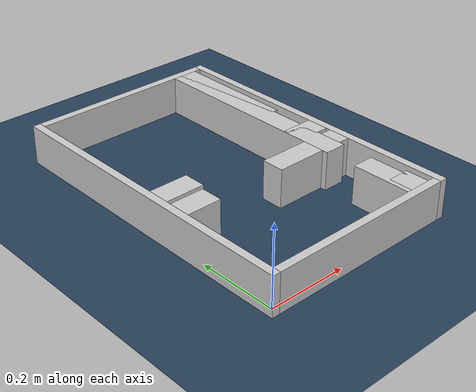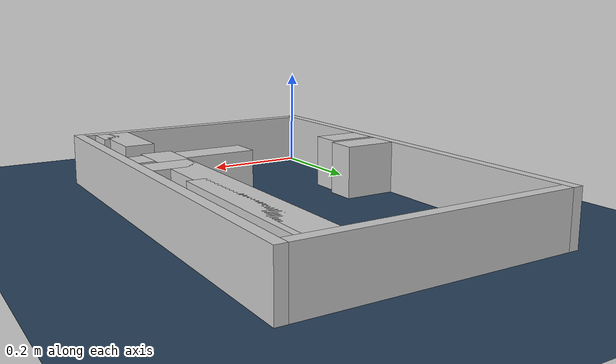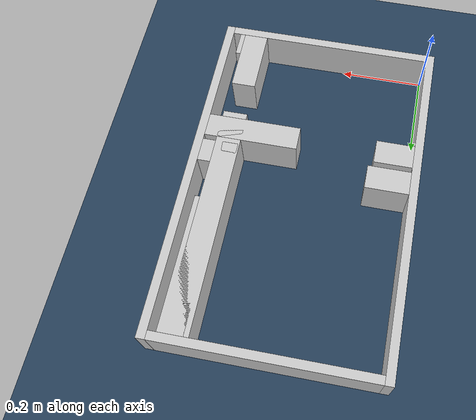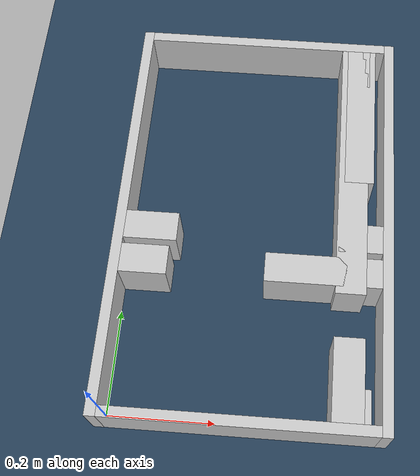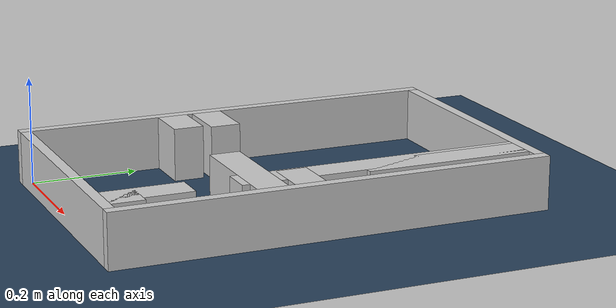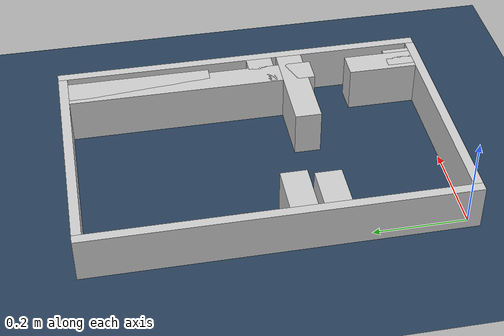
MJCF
<?xml version="1.0" ?>
<mujoco model="generated_real_template">
  <compiler angle="degree"/>
  <option timestep="0.002" integrator="implicitfast" iterations="100" cone="elliptic"/>
  <default>
    <geom density="1"/>
  </default>
  <asset>
    <texture builtin="gradient" height="3072" rgb1="0.3 0.5 0.7" rgb2="0 0 0" type="skybox" width="512"/>
    <texture builtin="checker" height="300" mark="edge" markrgb="0.8 0.8 0.8" name="groundplane" rgb1="0.2 0.3 0.4" rgb2="0.1 0.2 0.3" type="2d" width="300"/>
    <material name="groundplane" reflectance="0.2" texrepeat="5 5" texture="groundplane" texuniform="true"/>
  </asset>
  <worldbody>
    <light dir="0 0 -1" directional="true" pos="0 0 1.5"/>
    <geom name="floor" type="plane" condim="4" friction="0.5 0.005 0.001" material="groundplane" size="0 0 0.05"/>
    <body name="walls">
      <geom name="wall_boundary_left" type="box" condim="4" friction="1.0 0.005 0.0001" rgba="0.8 0.8 0.8 1" pos="-0.010000 0.387500 0.050000" euler="0 0 0.000000" size="0.010000 0.407500 0.050000"/>
      <geom name="wall_boundary_right" type="box" condim="4" friction="1.0 0.005 0.0001" rgba="0.8 0.8 0.8 1" pos="0.500000 0.387500 0.050000" euler="0 0 0.000000" size="0.010000 0.407500 0.050000"/>
      <geom name="wall_boundary_bottom" type="box" condim="4" friction="1.0 0.005 0.0001" rgba="0.8 0.8 0.8 1" pos="0.245000 -0.010000 0.050000" euler="0 0 0.000000" size="0.245000 0.010000 0.050000"/>
      <geom name="wall_boundary_top" type="box" condim="4" friction="1.0 0.005 0.0001" rgba="0.8 0.8 0.8 1" pos="0.245000 0.785000 0.050000" euler="0 0 0.000000" size="0.245000 0.010000 0.050000"/>
      <geom name="wall_inner_1_1" type="box" condim="4" friction="1.0 0.005 0.0001" rgba="0.8 0.8 0.8 1" pos="0.442918 0.029828 0.050000" euler="0 0 90.000000" size="0.029828 0.028500 0.050000"/>
      <geom name="wall_inner_1_2" type="box" condim="4" friction="1.0 0.005 0.0001" rgba="0.8 0.8 0.8 1" pos="0.442918 0.618897 0.050000" euler="0 0 90.000000" size="0.156103 0.028500 0.050000"/>
      <geom name="wall_inner_2_1" type="box" condim="4" friction="1.0 0.005 0.0001" rgba="0.8 0.8 0.8 1" pos="0.050689 0.344042 0.050000" euler="0 0 0.000000" size="0.050689 0.028500 0.050000"/>
      <geom name="wall_inner_2_2" type="box" condim="4" friction="1.0 0.005 0.0001" rgba="0.8 0.8 0.8 1" pos="0.448204 0.344042 0.050000" euler="0 0 0.000000" size="0.041796 0.028500 0.050000"/>
      <geom name="wall_inner_3_1" type="box" condim="4" friction="1.0 0.005 0.0001" rgba="0.8 0.8 0.8 1" pos="0.044835 0.275496 0.050000" euler="0 0 0.000000" size="0.044835 0.028500 0.050000"/>
      <geom name="wall_inner_3_2" type="box" condim="4" friction="1.0 0.005 0.0001" rgba="0.8 0.8 0.8 1" pos="0.380301 0.275496 0.050000" euler="0 0 0.000000" size="0.109699 0.028500 0.050000"/>
      <geom name="wall_inner_4_1" type="box" condim="4" friction="1.0 0.005 0.0001" rgba="0.8 0.8 0.8 1" pos="0.431398 0.075417 0.050000" euler="0 0 90.000000" size="0.075417 0.028500 0.050000"/>
      <geom name="wall_inner_4_2" type="box" condim="4" friction="1.0 0.005 0.0001" rgba="0.8 0.8 0.8 1" pos="0.431398 0.503767 0.050000" euler="0 0 90.000000" size="0.271233 0.028500 0.050000"/>
    </body>
  </worldbody>
</mujoco>
